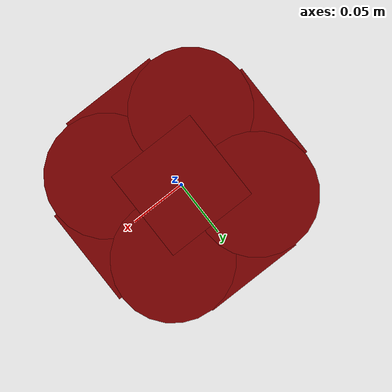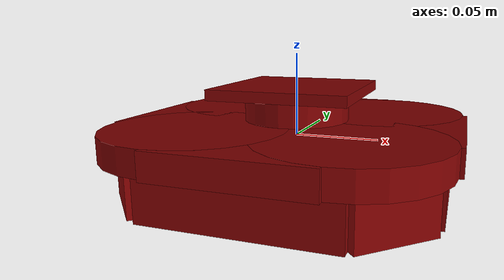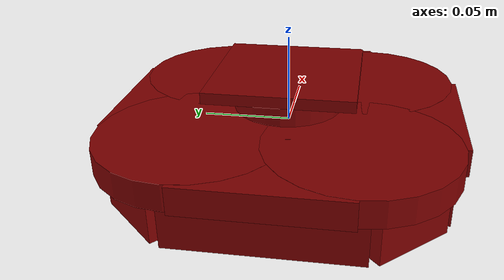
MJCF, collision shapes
<?xml version='1.0' encoding='UTF-8'?>
<mujoco model="model">
  <option timestep="0.0005" gravity="0.0 0.0 -9.81"/>
  <compiler angle="radian"/>
  <asset>
    <mesh file="visuals/lid.obj" name="lid_vis"/>
    <texture file="visuals/T_BC001.png" name="lid_material" type="2d"/>
    <material name="lid_material" rgba="1 1 1 1.0" texture="lid_material" shininess="0.4472135901451111" specular="0.3103448502657381"/>
  </asset>
  <default>
    <default class="visual">
      <geom conaffinity="0" contype="0" group="1" type="mesh"/>
    </default>
    <default class="collision">
      <geom group="0" rgba="0.5 0 0 0.5" density="1000" solref="0.01 1.8" solimp="0.8 0.95 0.02" condim="3"/>
    </default>
    <default class="spawn">
      <geom group="0" rgba="1 1 1 0.5" contype="0" conaffinity="0"/>
      <site group="0" rgba="1 1 1 0.5"/>
    </default>
    <default class="region">
      <geom group="1" conaffinity="0" contype="0" rgba="0 1 0 0" mass="0"/>
    </default>
  </default>
  <worldbody>
    <body>
      <body name="object">
        <geom mesh="lid_vis" type="mesh" solimp="0.998 0.998 0.001" solref="0.001 1" friction="0.95 0.3 0.1" class="visual" material="lid_material"/>
        <geom type="box" pos="-0.00013943761587142944 -0.0005664685741066933 0.002369612455368042" size="0.044179294258356094 0.09914391487836838 0.007656054105609655" quat="1.0 0.0 0.0 0.0" class="collision"/>
        <geom type="box" pos="-0.00013943761587142944 -0.0010716705583035946 0.002369612455368042" size="0.09949655830860138 0.04417931288480759 0.007656054105609655" quat="1.0 0.0 0.0 0.0" class="collision"/>
        <geom type="box" pos="-0.00012893229722976685 -0.0001379933673888445 -0.017040982842445374" size="0.05353599414229393 0.0924 0.013036094605922699" quat="1.0 0.0 0.0 0.0" class="collision"/>
        <geom type="box" pos="-0.00012893229722976685 -0.0001379933673888445 -0.017040982842445374" size="0.0924 0.05124291032552719 0.013036098331212997" quat="1.0 0.0 0.0 0.0" class="collision"/>
        <geom type="box" pos="-0.05685628950595856 -0.0562564954161644 -0.017040982842445374" size="0.025 0.023072922602295876 0.013036098331212997" quat="0.3675689697265625 0.0 0.0 -0.9299962520599365" class="collision"/>
        <geom type="box" pos="0.05669127032160759 -0.05712162330746651 -0.017040982842445374" size="0.025 0.023072924464941025 0.013036097399890423" quat="0.9175171256065369 0.0 0.0 -0.39769628643989563" class="collision"/>
        <geom type="box" pos="0.057317085564136505 0.05527745187282562 -0.017040982842445374" size="0.025 0.023072922602295876 0.013036098331212997" quat="0.9299962520599365 0.0 0.0 0.3675689697265625" class="collision"/>
        <geom type="box" pos="-0.056105323135852814 0.05631782487034798 -0.017040982842445374" size="0.025 0.023072924464941025 0.013036098331212997" quat="0.36893361806869507 0.0 0.0 0.9294557571411133" class="collision"/>
        <geom type="box" name="handle_main" pos="4.190951585769653e-05 0.00024718535132706165 0.028036177158355713" size="0.040737591683864594 0.040842387825250626 0.0031271344050765038" quat="1.0 0.0 0.0 0.0" class="collision"/>
        <geom type="cylinder" pos="-0.04477377235889435 0.044932685792446136 0.0025719106197357178" size="0.05290529131889343 0.007482408080250025" quat="1.0 0.0 0.0 0.0" class="collision"/>
        <geom type="cylinder" pos="0.04392644390463829 0.044932685792446136 0.0025719106197357178" size="0.05290529131889343 0.007482408080250025" quat="1.0 0.0 0.0 0.0" class="collision"/>
        <geom type="cylinder" pos="-0.044773779809474945 -0.04440337419509888 0.0025719106197357178" size="0.05290529131889343 0.007482408080250025" quat="1.0 0.0 0.0 0.0" class="collision"/>
        <geom type="cylinder" pos="0.04424436762928963 -0.04440337419509888 0.0025719106197357178" size="0.05290529131889343 0.007482408080250025" quat="1.0 0.0 0.0 0.0" class="collision"/>
        <geom type="cylinder" pos="0.0 0.0 0.017221719026565552" size="0.03168175742030144 0.00796907115727663" quat="1.0 0.0 0.0 0.0" class="collision"/>
        <geom class="region" name="reg_main" density="0" type="box" pos="-0.00785868 -1.2500000000012501e-06 0.0011457200000000011" size="0.1088955 0.099746 0.026270500000000002"/>
      </body>
    </body>
  </worldbody>
  <actuator/>
</mujoco>
